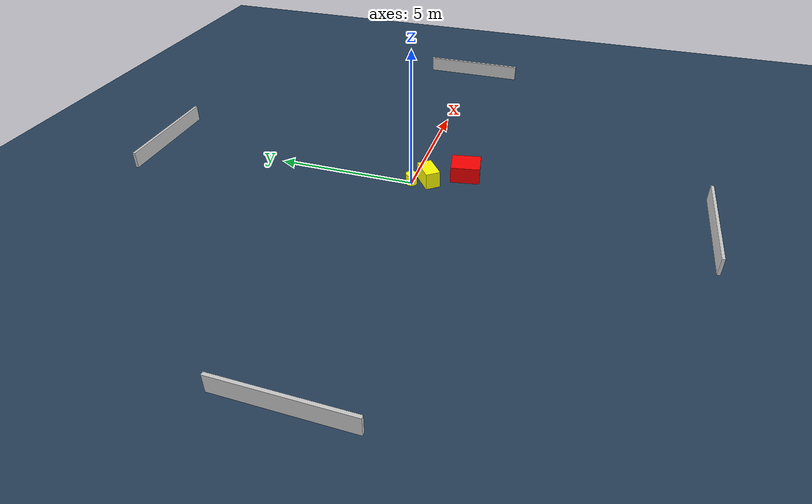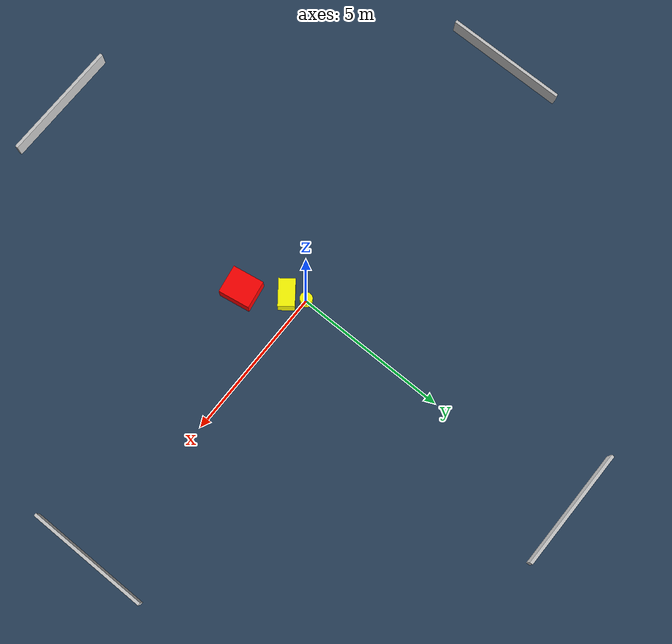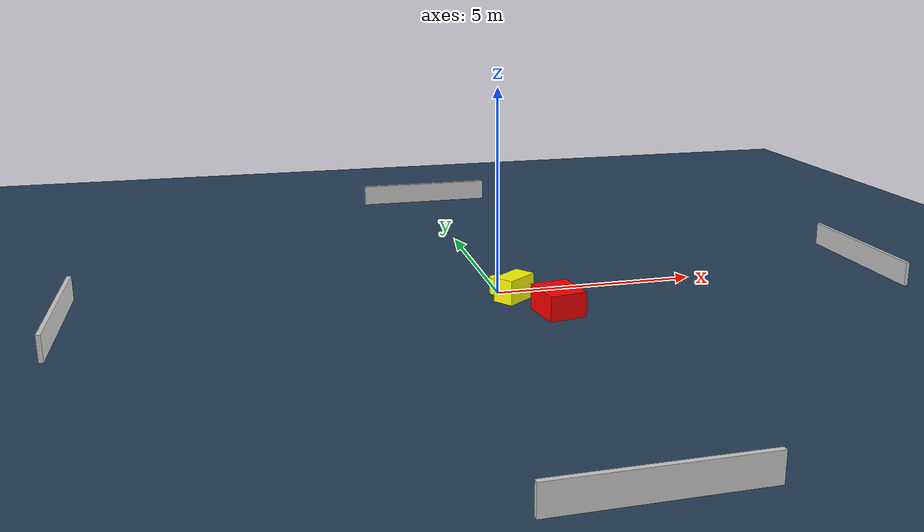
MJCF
<?xml version="1.0" ?>
<mujoco model="generated_environment">
  <option timestep="0.01" integrator="RK4" cone="elliptic"/>
  <default>
    <geom density="1"/>
  </default>
  <asset>
    <texture builtin="gradient" height="3072" name="skybox" rgb1="0.3 0.5 0.7" rgb2="0 0 0" type="skybox" width="512"/>
    <texture builtin="checker" height="300" name="groundplane" rgb1="0.2 0.3 0.4" rgb2="0.1 0.2 0.3" type="2d" width="300"/>
    <material name="groundplane" reflectance="0.2" texrepeat="5 5" texture="groundplane"/>
  </asset>
  <worldbody>
    <light dir="0 0 -1" directional="true" pos="0 0 1.5"/>
    <geom condim="3" friction="0.5 0.005 0.001" material="groundplane" name="floor" pos="0 0 0" size="0 0 0.05" type="plane"/>
    <body name="walls">
      <geom name="wall_1" condim="4" pos="-10.0 0.0 0.3" rgba="0.800000011920929 0.800000011920929 0.800000011920929 1.0" size="0.05 2.0 0.3" type="box"/>
      <geom name="wall_2" condim="4" pos="10.0 0.0 0.3" rgba="0.800000011920929 0.800000011920929 0.800000011920929 1.0" size="0.05 2.0 0.3" type="box"/>
      <geom name="wall_3" condim="4" pos="0.0 -10.0 0.3" rgba="0.800000011920929 0.800000011920929 0.800000011920929 1.0" size="2.0 0.05 0.3" type="box"/>
      <geom name="wall_4" condim="4" pos="0.0 10.0 0.3" rgba="0.800000011920929 0.800000011920929 0.800000011920929 1.0" size="2.0 0.05 0.3" type="box"/>
    </body>
    <body name="robot">
      <joint name="joint_x" type="slide" pos="0 0 0" axis="1 0 0"/>
      <joint name="joint_y" type="slide" pos="0 0 0" axis="0 1 0"/>
      <geom name="robot" type="cylinder" pos="0.0 0.0 0.2" size="0.2 0.2 0.0" mass="5.0" friction="1.0 0.005 0.0001" condim="4" rgba="1.0 1.0 0.0 1.0"/>
    </body>
    <body name="obstacle_1_movable">
      <geom name="obstacle_1_movable" condim="4" pos="0.2631357637323955 -0.5496010376210028 0.3" euler="0 0 37.398894963131724" friction="0.0 0.005 0.001" rgba="1.0 1.0 0.0 1.0" size="0.4358601913776017 0.2629412166089203 0.3" type="box" mass="0.1"/>
      <joint type="free"/>
    </body>
    <body name="obstacle_2_static">
      <geom name="obstacle_2_static" condim="4" pos="0.9995294849869134 -1.7276147097977683 0.3" euler="0 0 99.60163876406239" friction="0.0 0.005 0.001" rgba="1.0 0.0 0.0 1.0" size="0.5168310650058696 0.45466464667067713 0.3" type="box"/>
    </body>
  </worldbody>
  <actuator>
    <motor name="actuator_x" joint="joint_x" gear="1" ctrlrange="-1 1"/>
    <motor name="actuator_y" joint="joint_y" gear="1" ctrlrange="-1 1"/>
  </actuator>
</mujoco>
